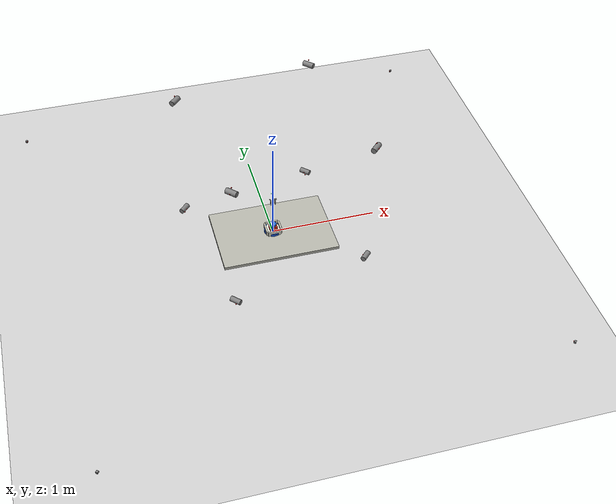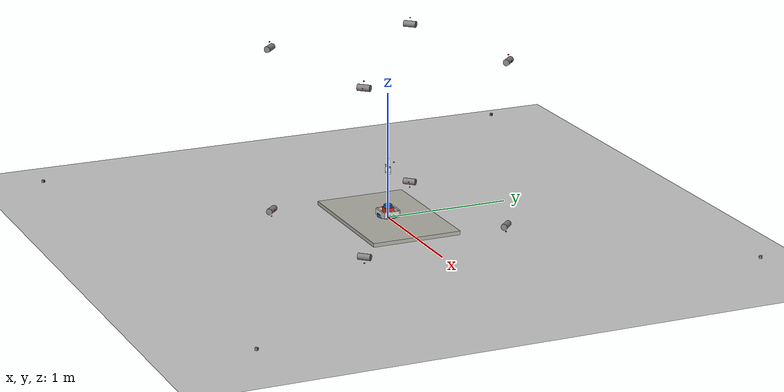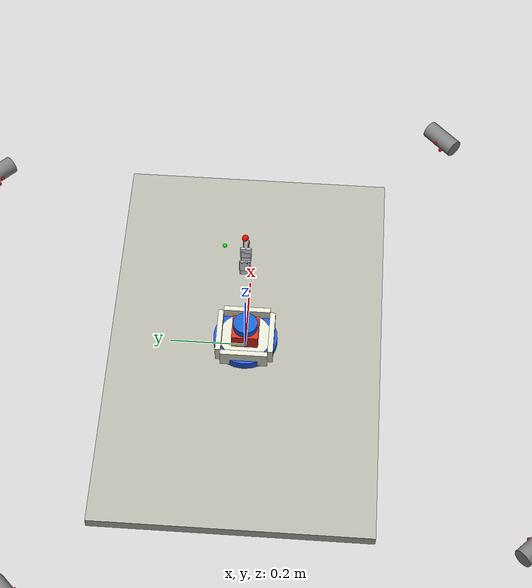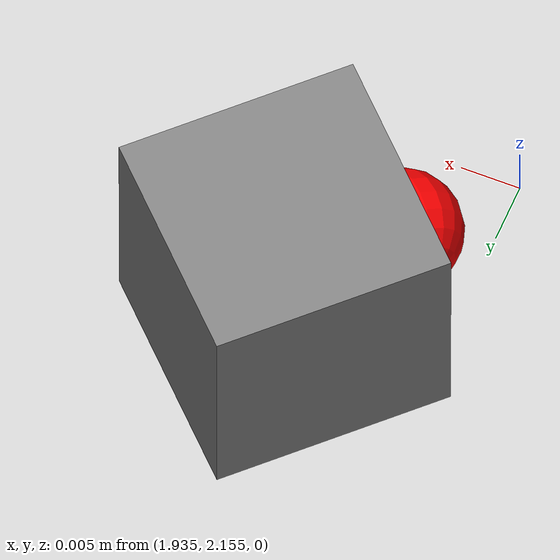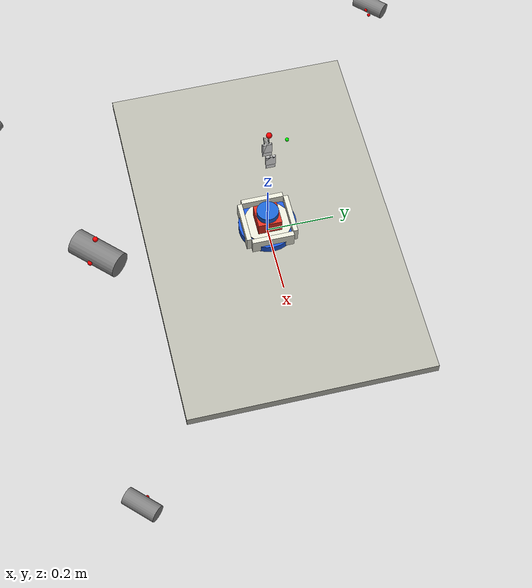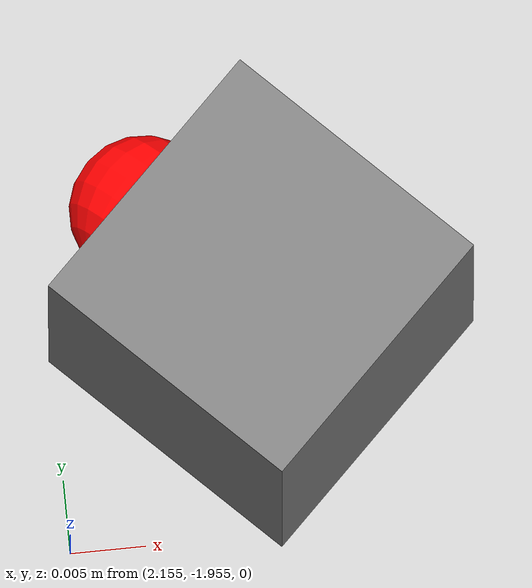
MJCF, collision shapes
<mujoco model="sim_compare_cdpr">
  <compiler autolimits="true" angle="degree"/>
  <option timestep="0.002" solver="Newton" iterations="50"/>
  <include file="/Users/damirnurtdinov/Desktop/My Courses/Диплом/RL_VLA_Bootstrapping/RL_VLA_Bootstrapping/robots/cdpr/cdpr_mujoco/cdpr.xml"/>
  <worldbody>
    <camera name="sim_compare_overview" pos="0.72 -0.72 0.72" xyaxes="0.707 0.707 0 -0.408 0.408 0.816" fovy="45"/>
    <body name="benchmark_table" pos="0 0 0">
      <geom name="benchmark_table_top" type="box" size="0.55 0.36 0.015"
            friction="1.1 0.04 0.01" condim="6" solref="0.006 1" solimp="0.92 0.98 0.001"
            margin="0.0005" gap="0" rgba="0.70 0.70 0.66 1"/>
    </body>
    <body name="block" pos="0 0 0.0520">
      <freejoint name="block_free"/>
      <inertial pos="0 0 0" mass="0.12" diaginertia="0.000098000 0.000098000 0.000098000"/>
      <geom name="block_collision" type="box" size="0.035 0.035 0.035" friction="1.0 0.01 0.001" condim="6" solref="0.006 1.0" solimp="0.92 0.98 0.001" margin="0.000500" gap="0.000000" rgba="0.85 0.18 0.12 1.0"/>
    </body>
    <body name="can" pos="0 0 0.0620">
      <freejoint name="can_free"/>
      <inertial pos="0 0 0" mass="0.1" diaginertia="0.000093100 0.000093100 0.000051200"/>
      <geom name="can_collision" type="cylinder" size="0.032 0.045" friction="1.0 0.03 0.006" condim="6" solref="0.006 1.0" solimp="0.92 0.98 0.001" margin="0.000500" gap="0.000000" rgba="0.1 0.38 0.8 1.0"/>
    </body>
    <body name="sphere" pos="0 0 0.0520">
      <freejoint name="sphere_free"/>
      <inertial pos="0 0 0" mass="0.09" diaginertia="0.000044100 0.000044100 0.000044100"/>
      <geom name="sphere_collision" type="sphere" size="0.035" friction="0.85 0.06 0.035" condim="6" solref="0.006 1.0" solimp="0.92 0.98 0.001" margin="0.000500" gap="0.000000" rgba="0.95 0.83 0.22 1.0"/>
    </body>
    <body name="plate" pos="0 0 0.0290">
      <freejoint name="plate_free"/>
      <inertial pos="0 0 0" mass="0.16" diaginertia="0.000296680 0.000296680 0.000578000"/>
      <geom name="plate_collision" type="cylinder" size="0.085 0.012" friction="1.2 0.05 0.012" condim="6" solref="0.006 1.0" solimp="0.92 0.98 0.001" margin="0.000500" gap="0.000000" rgba="0.12 0.35 0.85 0.92"/>
    </body>
    <body name="bowl" pos="0 0 0.0310">
      <freejoint name="bowl_free"/>
      <inertial pos="0 0 0" mass="0.18" diaginertia="0.000382740 0.000382740 0.000441000"/>

      <geom name="bowl_base_collision" type="cylinder" size="0.070 0.014"
            friction="1.0 0.04 0.01" condim="6" solref="0.006 1.0" solimp="0.92 0.98 0.001" margin="0.000500" gap="0.000000" rgba="0.88 0.88 0.82 0.88"/>
      <geom name="bowl_wall_x_pos" type="box" size="0.007 0.062 0.024" pos="0.069 0 0.014"
            friction="1.0 0.04 0.01" condim="6" solref="0.006 1.0" solimp="0.92 0.98 0.001" margin="0.000500" gap="0.000000" rgba="0.88 0.88 0.82 0.88"/>
      <geom name="bowl_wall_x_neg" type="box" size="0.007 0.062 0.024" pos="-0.069 0 0.014"
            friction="1.0 0.04 0.01" condim="6" solref="0.006 1.0" solimp="0.92 0.98 0.001" margin="0.000500" gap="0.000000" rgba="0.88 0.88 0.82 0.88"/>
      <geom name="bowl_wall_y_pos" type="box" size="0.062 0.007 0.024" pos="0 0.069 0.014"
            friction="1.0 0.04 0.01" condim="6" solref="0.006 1.0" solimp="0.92 0.98 0.001" margin="0.000500" gap="0.000000" rgba="0.88 0.88 0.82 0.88"/>
      <geom name="bowl_wall_y_neg" type="box" size="0.062 0.007 0.024" pos="0 -0.069 0.014"
            friction="1.0 0.04 0.01" condim="6" solref="0.006 1.0" solimp="0.92 0.98 0.001" margin="0.000500" gap="0.000000" rgba="0.88 0.88 0.82 0.88"/>
    </body>
  </worldbody>
</mujoco>

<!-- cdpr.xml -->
<mujoco>
  <compiler autolimits="true"/>
  <default>
    <site type="sphere" rgba="1 0 0 1" size="0.005"/>
    <tendon rgba="0.22 0.24 0.27 0.0" width="0.002"/>
    <default class="gripper_surface">
      <geom contype="0" conaffinity="0" group="1" material="gripper_surface_material"
            rgba="0.94 0.94 0.94 1"/>
    </default>
    <default class="gripper_edge">
      <geom contype="0" conaffinity="0" group="1" rgba="0.10 0.12 0.14 1"/>
    </default>
    <default class="finger_pad_collision">
      <geom contype="2" conaffinity="1" group="3" condim="4"
            friction="3.0 0.08 0.003" solref="0.005 1"
            solimp="0.95 0.99 0.001" margin="0.001"
            rgba="0.94 0.94 0.94 1"/>
    </default>
  </default>
  <visual>
    <headlight ambient=".16 .16 .16"
               diffuse=".62 .62 .62"
               specular=".08 .08 .08"/>
    <rgba haze=".035 .050 .075 1"/>
    <map znear="0.0002" zfar="2.0"/>
  </visual>

  <asset>
    <material name="gripper_surface_material" rgba="1 1 1 1"
              specular="0.35" shininess="0.45" reflectance="0.08"/>
    <!-- Real CAD base, converted from the supplied ASCII STL to binary STL for MuJoCo. -->
    <mesh name="real_gripper_base" file="meshes/base2.stl"
          scale="0.00055 0.00055 0.00055"/>
  </asset>

  <worldbody>
    <light name="side_light"
         pos="1.0 -1.0 2.0"
         dir="-1 1 -1"
         ambient="0.04 0.04 0.04"
         diffuse="0.42 0.42 0.42"
         specular="0.06 0.06 0.06"
         directional="true"
         castshadow="false"/>
    <light name="fill_light"
         pos="-1.0 -0.8 1.7"
         dir="1 0.8 -1"
         ambient="0.05 0.05 0.05"
         diffuse="0.32 0.32 0.32"
         specular="0.03 0.03 0.03"
         directional="true"
         castshadow="false"/>
    <camera name="overview" mode="fixed" pos="0 -0.5412341 0.5125"
            xyaxes="1 0 0 0 0.5 0.8660254" fovy="45"/>

    <body name="rotor_1_up" pos="-0.535 -0.755 1.309" euler="90 45 0">
      <geom name="rotor_1_up" type="cylinder" size=".025 .05"/>
      <site name="top_main_site_1" pos="-0.025 0.00001 0" />
      <site name="top_sidesite_1" pos="0 0.05 0" />

      <body name="rotor_1_down" pos="0 -1.309 0" euler="0 0 0">
        <geom name="rotor_1_down" type="cylinder" size=".025 .05"/>
        <site name="bot_main_site_1" pos="0.025 -0.00001 0" />
        <site name="bot_sidesite_1" pos="0 -0.05 0" />

        <body name="slider_1" pos="-2 0 0">
          <inertial pos="0 0 0" mass="2" diaginertia="0.0001 0.0001 0.0001" />
          <joint name="slider_1" type="slide" axis="-1 0 0" damping="5"/>
          <geom type="box" size="0.01 0.01 0.01" />
          <site name="slider_1" pos="0.01 0 0"/>
        </body>
      </body>
    </body>

    <body name="rotor_2_up" pos="0.755 -0.525 1.309" euler="90 135 0">
      <geom name="rotor_2_up" type="cylinder" size=".025 .05"/>
      <site name="top_main_site_2" pos="-0.025 0.00001 0" />
      <site name="top_sidesite_2" pos="0 0.05 0" />

      <body name="rotor_2_down" pos="0 -1.309 0" euler="0 0 0">
        <geom name="rotor_2_down" type="cylinder" size=".025 .05"/>
        <site name="bot_main_site_2" pos="0.025 -0.00001 0" />
        <site name="bot_sidesite_2" pos="0 -0.05 0" />

        <body name="slider_2" pos="-2 0 0">
          <inertial pos="0 0 0" mass="2" diaginertia="0.0001 0.0001 0.0001" />
          <joint name="slider_2" type="slide" axis="-1 0 0" damping="5"/>
          <geom type="box" size="0.01 0.01 0.01" />
          <site name="slider_2" pos="0.01 0 0"/>
        </body>
      </body>
    </body>

    <body name="rotor_3_up" pos="0.535 0.755 1.309" euler="90 -135 0">
      <geom name="rotor_3_up" type="cylinder" size=".025 .05"/>
      <site name="top_main_site_3" pos="-0.025 0.00001 0" />
      <site name="top_sidesite_3" pos="0 0.05 0" />

      <body name="rotor_3_down" pos="0 -1.309 0" euler="0 0 0">
        <geom name="rotor_3_down" type="cylinder" size=".025 .05"/>
        <site name="bot_main_site_3" pos="0.025 -0.00001 0" />
        <site name="bot_sidesite_3" pos="0 -0.05 0" />

        <body name="slider_3" pos="-2 0 0">
          <inertial pos="0 0 0" mass="2" diaginertia="0.0001 0.0001 0.0001" />
          <joint name="slider_3" type="slide" axis="-1 0 0" damping="5"/>
          <geom type="box" size="0.01 0.01 0.01" />
          <site name="slider_3" pos="0.01 0 0"/>
        </body>
      </body>
    </body>

    <body name="rotor_4_up" pos="-0.755 0.525 1.309" euler="90  -45 0">
      <geom name="rotor_4_up" type="cylinder" size=".025 .05"/>
      <site name="top_main_site_4" pos="-0.025 0.00001 0" />
      <site name="top_sidesite_4" pos="0 0.05 0" />

      <body name="rotor_4_down" pos="0 -1.309 0" euler="0 0 0">
        <geom name="rotor_4_down" type="cylinder" size=".025 .05"/>
        <site name="bot_main_site_4" pos="0.025 -0.00001 0" />
        <site name="bot_sidesite_4" pos="0 -0.05 0" />

        <body name="slider_4" pos="-2 0 0">
          <inertial pos="0 0 0" mass="2" diaginertia="0.0001 0.0001 0.0001" />
          <joint name="slider_4" type="slide" axis="-1 0 0" damping="5"/>
          <geom type="box" size="0.01 0.01 0.01" />
          <site name="slider_4" pos="0.01 0 0"/>
        </body>
      </body>
    </body>

    <!-- Floor -->
    <geom name="floor" type="plane" size="5 5 0.1" pos="0 0 -0.1" rgba="0.8 0.8 0.8 1"/>

    <!-- Red square object on floor -->

    <!-- End-effector -->
    <!-- ===== Cable-suspended base (translation+rotation from cables) ===== -->
    <body name="ee_base" pos="0 0 0.40">
      <joint name="ee_free" type="free" damping="3" armature="0.002"/>
      <inertial pos="0 0 0" mass="1.2" diaginertia="0.02 0.02 0.02"/>

      <!-- Cable attachment point from the reference image; coordinates are unchanged. -->
      <site name="topcenter" pos="0 0 0.08" size="0.008" rgba="1 0 0 1"/>

      <!-- ===== NEW: intermediate yaw body ===== -->
      <body name="yaw_frame" pos="0 0 0">
        <!-- must have inertial because it has a joint -->
        <inertial pos="0 0 0" mass="0.15" diaginertia="0.0006 0.0006 0.0006"/>
        <joint name="ee_yaw" type="hinge" axis="0 0 1"
              limited="true" range="-180 180" damping="0.4"/>

        <!-- ===== Orientation stabilizer under yaw ===== -->
        <body name="ee_stab" pos="0 0 0">
          <inertial pos="0 0 0" mass="0.6" diaginertia="0.005 0.005 0.005"/>
          <joint name="ee_ball" type="ball" damping="6" stiffness="80" armature="0.02" limited="false"/>

          <!-- Camera follows the lowered mesh while retaining its clear downward view. -->
          <body name="camera_body" pos="0 0.05 0.045">
            <site name="ee_camera_marker" type="sphere" size="0.005" rgba="0 1 0 1"/>
            <camera name="ee_camera" mode="fixed" fovy="60" euler="-15 0 0"/>
          </body>

          <!-- Gripper -->
          <body name="ee_platform" pos="0 0 0.08">
            <inertial pos="0 0 0" mass="0.35" diaginertia="0.003 0.003 0.003"/>

            <!-- The supplied base is lowered so topcenter lies on top of the circular
                 housing; its camera mount still points toward camera_body at +Y. -->
            <geom name="palm" class="gripper_surface" type="mesh" mesh="real_gripper_base"
                  pos="0 0 -0.025" euler="180 0 0"/>

            <!-- The synchronized slide-joint control contract is unchanged. -->
            <body name="finger_left_car" pos="0.02 0 0">
              <inertial pos="0 0 0" mass="0.08" diaginertia="0.0002 0.0002 0.00015"/>
              <joint name="finger_l" type="slide" axis="1 0 0" limited="true" range="0 0.03" damping="3.0"/>
              <geom name="finger_l_shoulder" class="gripper_surface" type="capsule"
                    fromto="0.010 0 -0.055  0 0 -0.070" size="0.0025"/>
              <geom name="finger_l_shoulder_edge_front" class="gripper_edge" type="capsule"
                    fromto="0.014 -0.0065 -0.0565  0.004 -0.0065 -0.0715" size="0.0013"/>
              <geom name="finger_l_shoulder_edge_back" class="gripper_edge" type="capsule"
                    fromto="0.014 0.0065 -0.0565  0.004 0.0065 -0.0715" size="0.0013"/>
              <geom name="finger_l_link" class="gripper_surface" type="box"
                    size="0.0025 0.012 0.0175" pos="0 0 -0.0875"/>
              <geom name="finger_l_tip" class="gripper_surface" type="box"
                    size="0.0025 0.012 0.007" pos="0 0 -0.112"/>
              <geom name="finger_l_edge_front_outer" class="gripper_edge" type="capsule"
                    fromto="0.0018 -0.0125 -0.0695  0.0018 -0.0125 -0.1195" size="0.0007"/>
              <geom name="finger_l_edge_front_inner" class="gripper_edge" type="capsule"
                    fromto="-0.0018 -0.0125 -0.0695  -0.0018 -0.0125 -0.1195" size="0.0007"/>
              <geom name="finger_l_edge_back_outer" class="gripper_edge" type="capsule"
                    fromto="0.0018 0.0125 -0.0695  0.0018 0.0125 -0.1195" size="0.0007"/>
              <geom name="finger_l_edge_back_inner" class="gripper_edge" type="capsule"
                    fromto="-0.0018 0.0125 -0.0695  -0.0018 0.0125 -0.1195" size="0.0007"/>
              <geom name="finger_l_edge_front_bottom" class="gripper_edge" type="capsule"
                    fromto="-0.0018 -0.0125 -0.1195  0.0018 -0.0125 -0.1195" size="0.0007"/>
              <geom name="finger_l_edge_back_bottom" class="gripper_edge" type="capsule"
                    fromto="-0.0018 0.0125 -0.1195  0.0018 0.0125 -0.1195" size="0.0007"/>
              <geom name="left_finger_pad" class="finger_pad_collision" type="box"
                    size="0.0025 0.014 0.0175" pos="0 0 -0.0875"/>
            </body>

            <body name="finger_right_car" pos="-0.02 0 0">
              <inertial pos="0 0 0" mass="0.08" diaginertia="0.0002 0.0002 0.00015"/>
              <joint name="finger_r" type="slide" axis="-1 0 0" limited="true" range="0 0.03" damping="3.0"/>
              <geom name="finger_r_shoulder" class="gripper_surface" type="capsule"
                    fromto="-0.010 0 -0.055  0 0 -0.070" size="0.0025"/>
              <geom name="finger_r_shoulder_edge_front" class="gripper_edge" type="capsule"
                    fromto="-0.014 -0.0065 -0.0565  -0.004 -0.0065 -0.0715" size="0.0013"/>
              <geom name="finger_r_shoulder_edge_back" class="gripper_edge" type="capsule"
                    fromto="-0.014 0.0065 -0.0565  -0.004 0.0065 -0.0715" size="0.0013"/>
              <geom name="finger_r_link" class="gripper_surface" type="box"
                    size="0.0025 0.012 0.0175" pos="0 0 -0.0875"/>
              <geom name="finger_r_tip" class="gripper_surface" type="box"
                    size="0.0025 0.012 0.007" pos="0 0 -0.112"/>
              <geom name="finger_r_edge_front_outer" class="gripper_edge" type="capsule"
                    fromto="-0.0018 -0.0125 -0.0695  -0.0018 -0.0125 -0.1195" size="0.0007"/>
              <geom name="finger_r_edge_front_inner" class="gripper_edge" type="capsule"
                    fromto="0.0018 -0.0125 -0.0695  0.0018 -0.0125 -0.1195" size="0.0007"/>
              <geom name="finger_r_edge_back_outer" class="gripper_edge" type="capsule"
                    fromto="-0.0018 0.0125 -0.0695  -0.0018 0.0125 -0.1195" size="0.0007"/>
              <geom name="finger_r_edge_back_inner" class="gripper_edge" type="capsule"
                    fromto="0.0018 0.0125 -0.0695  0.0018 0.0125 -0.1195" size="0.0007"/>
              <geom name="finger_r_edge_front_bottom" class="gripper_edge" type="capsule"
                    fromto="-0.0018 -0.0125 -0.1195  0.0018 -0.0125 -0.1195" size="0.0007"/>
              <geom name="finger_r_edge_back_bottom" class="gripper_edge" type="capsule"
                    fromto="-0.0018 0.0125 -0.1195  0.0018 0.0125 -0.1195" size="0.0007"/>
              <geom name="right_finger_pad" class="finger_pad_collision" type="box"
                    size="0.0025 0.014 0.0175" pos="0 0 -0.0875"/>
            </body>
          </body>
        </body>
      </body>
    </body>

  </worldbody>

  <equality>
    <!-- Enforce q_r = q_l  (10 poly coefficients: a0..a9). q2 = a0 + a1*q1 + ... -->
    <joint joint1="finger_l" joint2="finger_r" polycoef="0 1 0 0 0"/>
  </equality>

  <tendon>
    <spatial name="rope_1" limited="true" range="0 4.235" stiffness="0" damping="0" >
      <site site="topcenter" />
      <geom geom="rotor_1_up" sidesite="top_sidesite_1" />
      <site site="top_main_site_1" />
      <site site="bot_main_site_1" />
      <geom geom="rotor_1_down" sidesite="bot_sidesite_1" />
      <site site="slider_1" />
    </spatial>

    <spatial name="rope_2" limited="true" range="0 4.235" stiffness="0" damping="0" >
      <site site="topcenter" />
      <geom geom="rotor_2_up" sidesite="top_sidesite_2" />
      <site site="top_main_site_2" />
      <site site="bot_main_site_2" />
      <geom geom="rotor_2_down" sidesite="bot_sidesite_2" />
      <site site="slider_2" />
    </spatial>

    <spatial name="rope_3" limited="true" range="0 4.235" stiffness="0" damping="0" >
      <site site="topcenter" />
      <geom geom="rotor_3_up" sidesite="top_sidesite_3" />
      <site site="top_main_site_3" />
      <site site="bot_main_site_3" />
      <geom geom="rotor_3_down" sidesite="bot_sidesite_3" />
      <site site="slider_3" />
    </spatial>

    <spatial name="rope_4" limited="true" range="0 4.235" stiffness="0" damping="0" >
      <site site="topcenter" />
      <geom geom="rotor_4_up" sidesite="top_sidesite_4" />
      <site site="top_main_site_4" />
      <site site="bot_main_site_4" />
      <geom geom="rotor_4_down" sidesite="bot_sidesite_4" />
      <site site="slider_4" />
    </spatial>
  </tendon>

  <actuator>
    <!-- Tuned for the 2 ms MJWarp timestep: the previous kv=300 setting was
         heavily overdamped and left the platform far behind policy targets. -->
    <position name="slider_1_pos" joint="slider_1" ctrlrange="-4.5 4.5" kp="6000" kv="100"/>
    <position name="slider_2_pos" joint="slider_2" ctrlrange="-4.5 4.5" kp="6000" kv="100"/>
    <position name="slider_3_pos" joint="slider_3" ctrlrange="-4.5 4.5" kp="6000" kv="100"/>
    <position name="slider_4_pos" joint="slider_4" ctrlrange="-4.5 4.5" kp="6000" kv="100"/>
    <!-- Tool yaw and gripper -->
    <position name="act_ee_yaw" joint="ee_yaw" kp="30" ctrlrange="-180 180"/>
    <!-- Normalized gripper target: ctrl=0 is closed, ctrl=1 maps to 0.03 m finger travel. -->
    <position name="act_gripper" joint="finger_l" kp="5.0" kv="0.1"
              gear="33.3333333333" ctrlrange="0 1"/>
  </actuator>

  <sensor>
    <framepos objtype="camera" objname="overview"/>
    <framequat objtype="camera" objname="overview"/>
    <framepos objtype="camera" objname="ee_camera"/>
    <framequat objtype="camera" objname="ee_camera"/>
  </sensor>
</mujoco>
